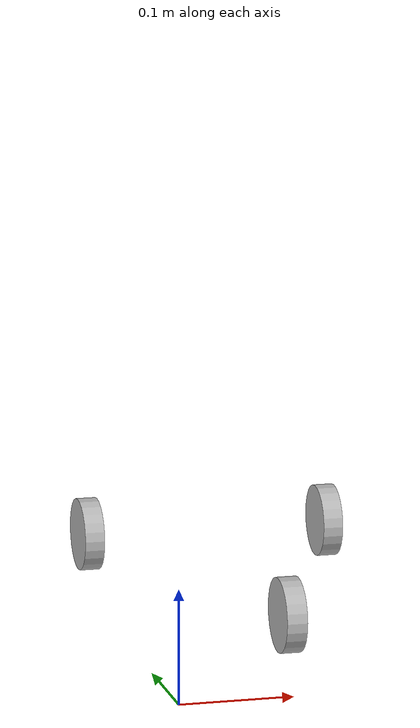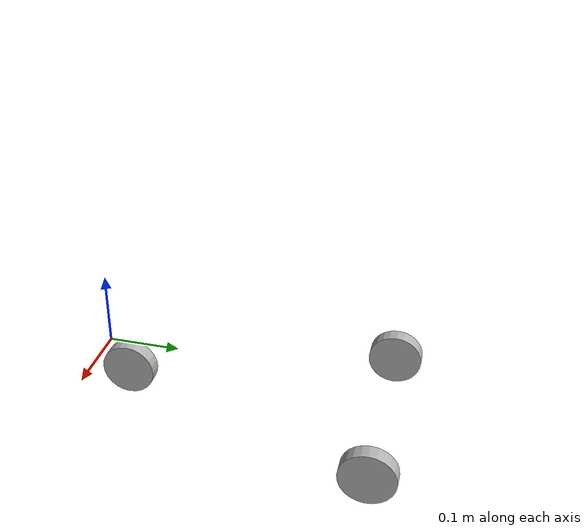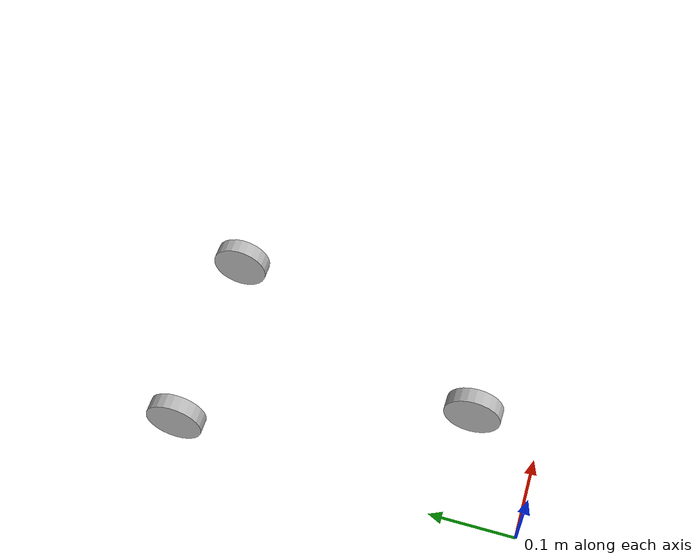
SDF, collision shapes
<?xml version="1.0" ?>
<sdf version="1.7">
  <model name="fobo" xmlns:xacro="http://ros.org/wiki/xacro">
    <pose>0.0 0.0 0.0 0.0 0.0 0.0</pose>

    <link name="base_footprint"/>

    <joint name="base_joint" type="fixed">
      <parent>base_footprint</parent>
      <child>base_link</child>
      <pose>0.0 0.0 0.000 0 0 0</pose>
    </joint>

    <link name="base_link">
      <visual name="base_visual">
        <pose>0 0 0 0 0 0</pose>
        <geometry>
          <mesh>
            <uri>model://own/meshes/total_model.stl</uri>
            <scale>0.001 0.001 0.001</scale>
          </mesh>
        </geometry>
      </visual>

      <collision name="base_collision">
        <pose>0.1175 0.5 0.5 0 0 0</pose>
        <geometry>
          <box>
            <size>0. 0. 0.</size>
          </box>
        </geometry>
      </collision>
    </link>

    <joint name="wheel_left_joint" type="revolute">
      <parent>base_link</parent>
      <child>wheel_left_link</child>
      <pose>0.235 0.4 0.05 0 1.57 0</pose>
      <axis>
        <xyz>0 0 1</xyz>
      </axis>
    </joint>

    <link name="wheel_left_link">
      <collision name="wheel_left_collision">
        <pose>0.235 0.4 0.05 0 1.57 0</pose>
        <geometry>
          <cylinder>
            <radius>0.033</radius>
            <length>0.018</length>
          </cylinder>
        </geometry>
        <surface>
          <!-- This friction pamareter don't contain reliable data!! -->
          <friction>
            <ode>
              <mu>100000.0</mu>
              <mu2>100000.0</mu2>
              <fdir1>0 0 0</fdir1>
              <slip1>0.0</slip1>
              <slip2>0.0</slip2>
            </ode>
          </friction>
          <contact>
            <ode>
              <soft_cfm>0</soft_cfm>
              <soft_erp>0.2</soft_erp>
              <kp>1e+5</kp>
              <kd>1</kd>
              <max_vel>0.01</max_vel>
              <min_depth>0.001</min_depth>
            </ode>
          </contact>
        </surface>
      </collision>

      <visual name="wheel_left_visual">
        <pose>0.235 0.4 0.05 0 1.57 0</pose>
        <geometry>
          <cylinder>
            <radius>0.033</radius>
            <length>0.018</length>
          </cylinder>
        </geometry>
      </visual>
    </link>

    <joint name="wheel_right_joint" type="revolute">
      <parent>base_link</parent>
      <child>wheel_right_link</child>
      <pose>0.01 0.4 0.05 0 1.57 0</pose>
      <axis>
        <xyz>0 0 1</xyz>
      </axis>
    </joint>

    <link name="wheel_right_link">
      <collision name="wheel_right_collision">
        <pose>0.01 0.4 0.05 0 1.57 0</pose>
        <geometry>
          <cylinder>
            <radius>0.033</radius>
            <length>0.018</length>
          </cylinder>
        </geometry>
        <surface>
          <!-- This friction pamareter don't contain reliable data!! -->
          <friction>
            <ode>
              <mu>100000.0</mu>
              <mu2>100000.0</mu2>
              <fdir1>0 0 0</fdir1>
              <slip1>0.0</slip1>
              <slip2>0.0</slip2>
            </ode>
          </friction>
          <contact>
            <ode>
              <soft_cfm>0</soft_cfm>
              <soft_erp>0.2</soft_erp>
              <kp>1e+5</kp>
              <kd>1</kd>
              <max_vel>0.01</max_vel>
              <min_depth>0.001</min_depth>
            </ode>
          </contact>
        </surface>
      </collision>

      <visual name="wheel_right_visual">
        <pose>0.01 0.4 0.05 0 1.57 0</pose>
        <geometry>
          <cylinder>
            <radius>0.033</radius>
            <length>0.018</length>
          </cylinder>
        </geometry>
      </visual>
    </link>

    <joint name="wheel_front_joint" type="revolute">
      <parent>base_link</parent>
      <child>wheel_front_link</child>
      <pose>0.1157 0.08 0.05 0 1.57 0</pose>
      <axis>
        <xyz>0 0 1</xyz>
      </axis>
    </joint>

    <link name="wheel_front_link">
      <collision name="wheel_front_collision">
        <pose>0.1157 0.08 0.05 0 1.57 0</pose>
        <geometry>
          <cylinder>
            <radius>0.033</radius>
            <length>0.018</length>
          </cylinder>
        </geometry>
        <surface>
          <!-- This friction pamareter don't contain reliable data!! -->
          <friction>
            <ode>
              <mu>100000.0</mu>
              <mu2>100000.0</mu2>
              <fdir1>0 0 0</fdir1>
              <slip1>0.0</slip1>
              <slip2>0.0</slip2>
            </ode>
          </friction>
          <contact>
            <ode>
              <soft_cfm>0</soft_cfm>
              <soft_erp>0.2</soft_erp>
              <kp>1e+5</kp>
              <kd>1</kd>
              <max_vel>0.01</max_vel>
              <min_depth>0.001</min_depth>
            </ode>
          </contact>
        </surface>
      </collision>

      <visual name="wheel_front_visual">
        <pose>0.1157 0.08 0.05 0 1.57 0</pose>
        <geometry>
          <cylinder>
            <radius>0.033</radius>
            <length>0.018</length>
          </cylinder>
        </geometry>
      </visual>
    </link>

  </model>
</sdf>
